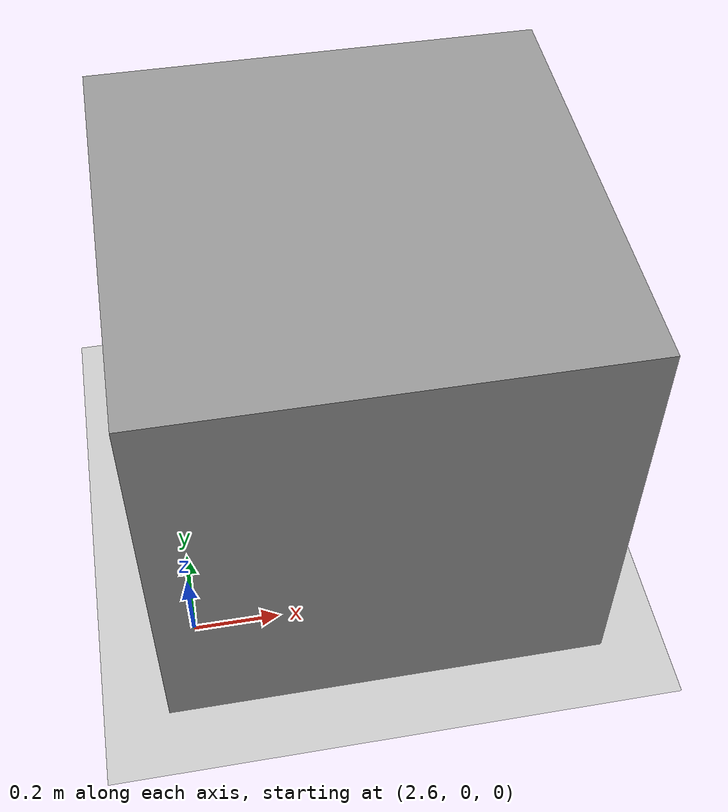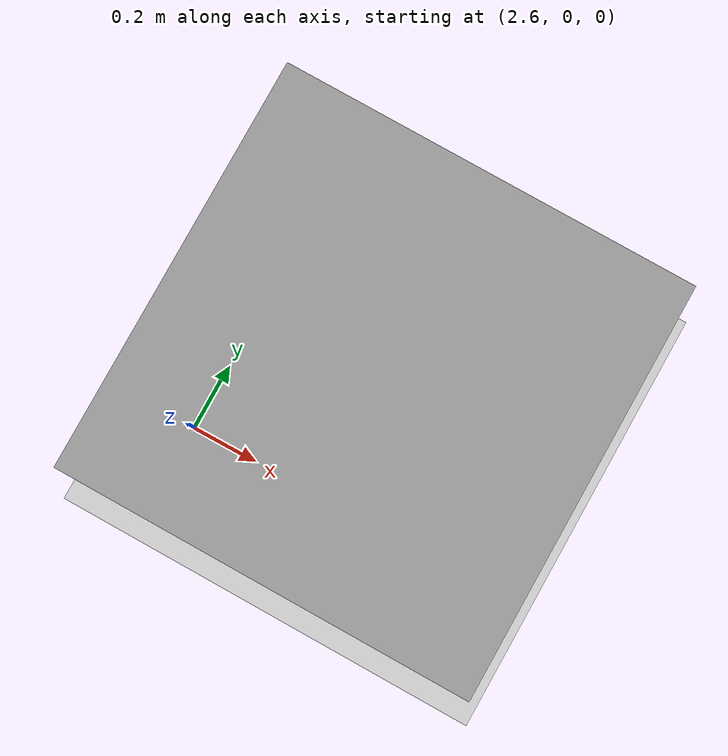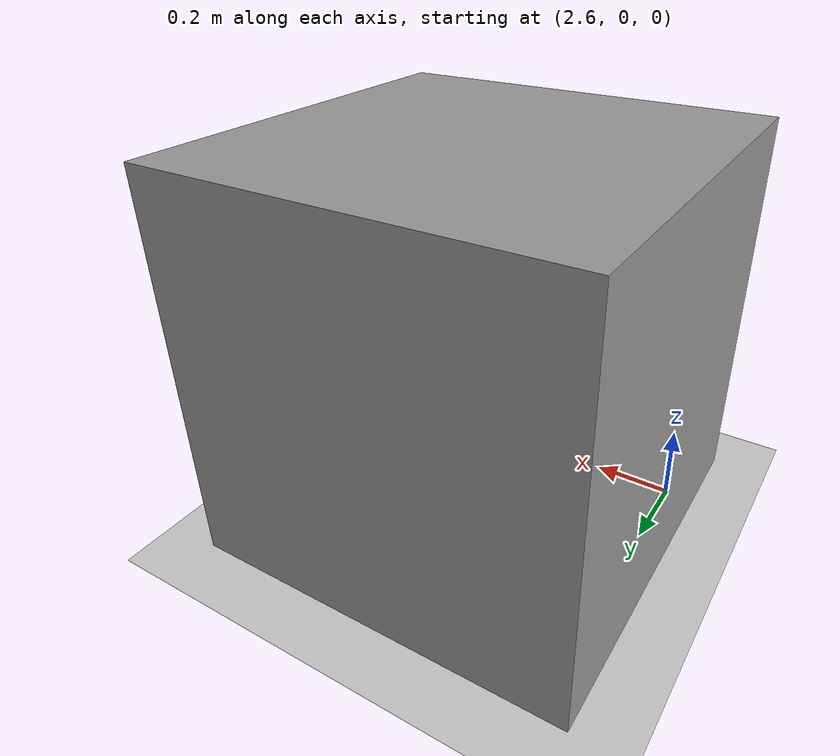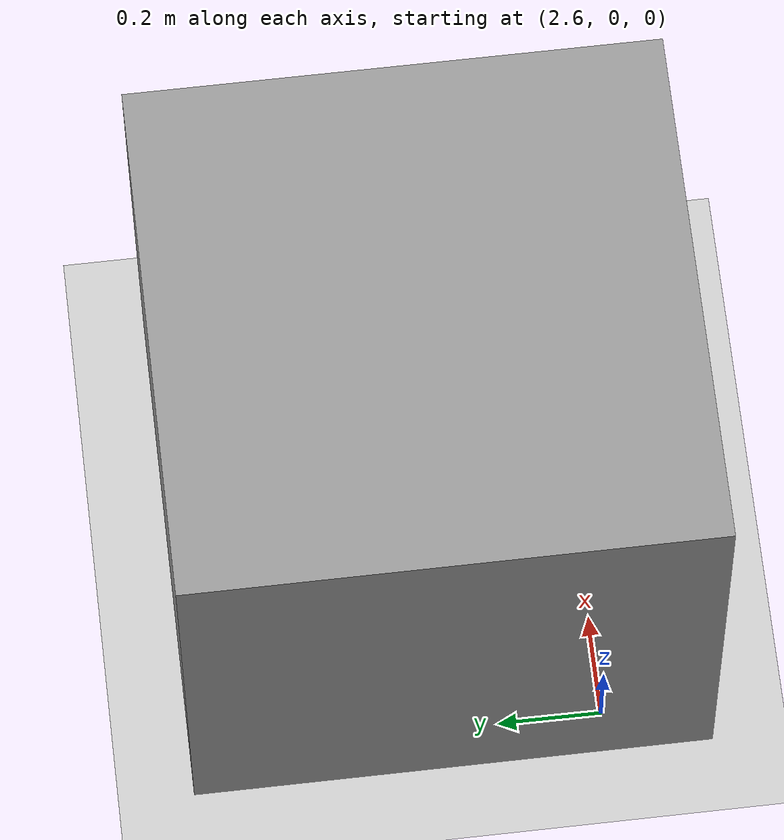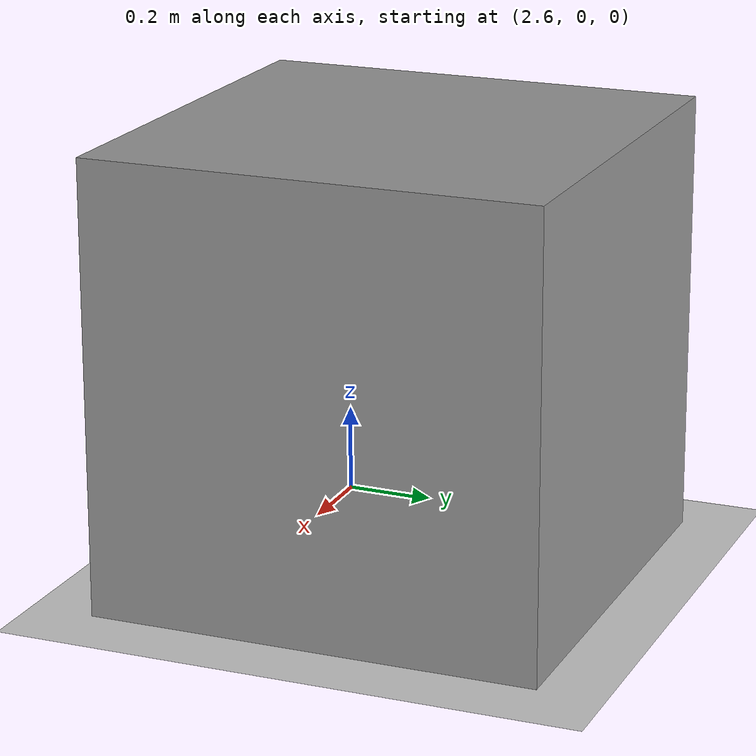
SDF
<sdf version="1.5">
 <world name="default">
  <include><uri>model://sun</uri></include>
  <physics name="dart_1ms" default="1" type="dart">
   <max_step_size>0.001</max_step_size>
   <real_time_factor>1</real_time_factor>
   <real_time_update_rate>1000</real_time_update_rate>
   <dart><solver><solver_type>pgs</solver_type></solver></dart>
  </physics>
  <physics name="dart_2ms" default="0" type="dart">
   <max_step_size>0.002</max_step_size>
   <real_time_factor>1</real_time_factor>
   <real_time_update_rate>500</real_time_update_rate>
   <dart><solver><solver_type>pgs</solver_type></solver></dart>
  </physics>
  <physics name="dart_3ms" default="0" type="dart">
   <max_step_size>0.003</max_step_size>
   <real_time_factor>1</real_time_factor>
   <real_time_update_rate>333</real_time_update_rate>
   <dart><solver><solver_type>pgs</solver_type></solver></dart>
  </physics>
  <include><uri>model://ground_plane</uri></include>
  <gravity>0 0 -9.8</gravity>
  <magnetic_field>6e-06 2.3e-05 -4.2e-05</magnetic_field>
  <atmosphere type="adiabatic"/>
  <scene><ambient>0.4 0.4 0.4 1</ambient><background>0.7 0.7 0.7 1</background><shadows>1</shadows></scene>
  <audio><device>default</device></audio>
  <spherical_coordinates>
   <surface_model>EARTH_WGS84</surface_model>
   <latitude_deg>0</latitude_deg>
   <longitude_deg>0</longitude_deg>
   <elevation>0</elevation>
   <heading_deg>0</heading_deg>
  </spherical_coordinates>
  <model name="unit_box">
   <pose>3.02326 0.294288 0.5 0 -0 0</pose>
   <link name="link">
    <inertial>
     <mass>1</mass>
     <inertia>
      <ixx>0.166667</ixx>
      <ixy>0</ixy>
      <ixz>0</ixz>
      <iyy>0.166667</iyy>
      <iyz>0</iyz>
      <izz>0.166667</izz>
     </inertia>
    </inertial>
    <collision name="collision"><geometry><box><size>1 1 1</size></box></geometry></collision>
    <visual name="visual">
     <geometry><box><size>1 1 1</size></box></geometry>
     <material>
      <script><name>Gazebo/Grey</name><uri>file://media/materials/scripts/gazebo.material</uri></script>
     </material>
    </visual>
   </link>
  </model>
 </world>
</sdf>
